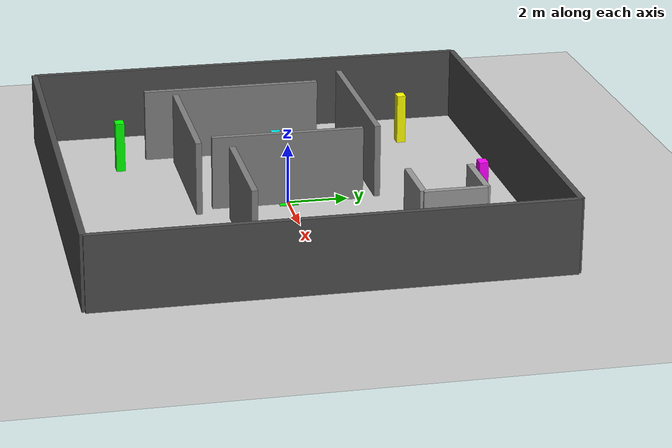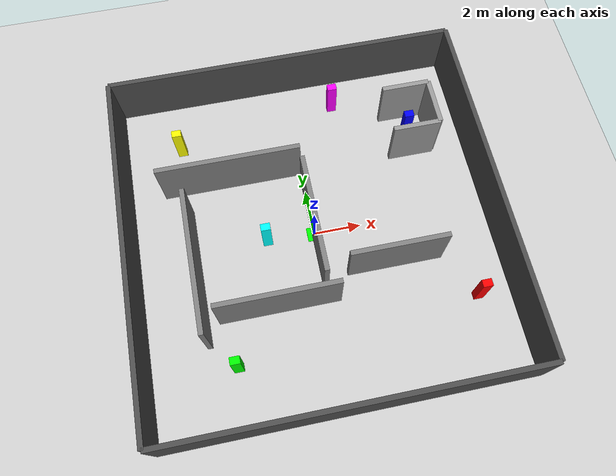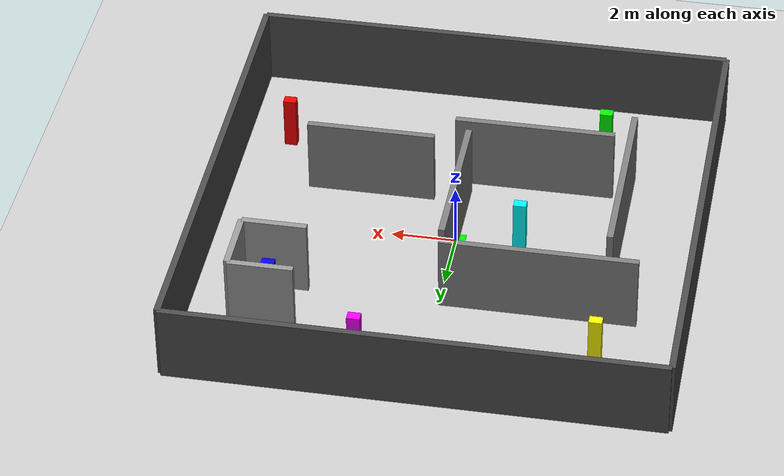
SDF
<?xml version="1.0" ?>
<sdf version="1.6">
  <world name="nidar_air_mouse">
    <physics type="ode">
      <max_step_size>0.001</max_step_size>
      <real_time_factor>1.0</real_time_factor>
      <real_time_update_rate>1000</real_time_update_rate>
    </physics>

    <scene>
      <ambient>0.8 0.8 0.8 1</ambient>
      <background>0.7 0.7 0.7 1</background>
      <shadows>true</shadows>
    </scene>

    <include>
      <uri>model://ground_plane</uri>
    </include>

    <include>
      <uri>model://sun</uri>
    </include>

    <!-- NIDAR AirMouse arena: 15x15m, launch pad 2ft x 2ft at origin -->
    <model name="launch_pad">
      <static>true</static>
      <pose>0 0 0.01 0 0 0</pose>
      <link name="link">
        <collision name="collision">
          <geometry><box><size>0.6096 0.6096 0.02</size></box></geometry>
        </collision>
        <visual name="visual">
          <geometry><box><size>0.6096 0.6096 0.02</size></box></geometry>
          <material><ambient>0 1 0 1</ambient><diffuse>0 1 0 1</diffuse></material>
        </visual>
      </link>
    </model>

    <!-- Outer walls 15x15m, height 2.44m (8ft) -->
    <model name="outer_north">
      <static>true</static>
      <pose>0 7.5 1.22 0 0 0</pose>
      <link name="link">
        <collision name="collision"><geometry><box><size>15 0.2 2.44</size></box></geometry></collision>
        <visual name="visual"><geometry><box><size>15 0.2 2.44</size></box></geometry><material><diffuse>0.3 0.3 0.3 1</diffuse></material></visual>
      </link>
    </model>
    <model name="outer_south">
      <static>true</static>
      <pose>0 -7.5 1.22 0 0 0</pose>
      <link name="link">
        <collision name="collision"><geometry><box><size>15 0.2 2.44</size></box></geometry></collision>
        <visual name="visual"><geometry><box><size>15 0.2 2.44</size></box></geometry><material><diffuse>0.3 0.3 0.3 1</diffuse></material></visual>
      </link>
    </model>
    <model name="outer_east">
      <static>true</static>
      <pose>7.5 0 1.22 0 0 0</pose>
      <link name="link">
        <collision name="collision"><geometry><box><size>0.2 15 2.44</size></box></geometry></collision>
        <visual name="visual"><geometry><box><size>0.2 15 2.44</size></box></geometry><material><diffuse>0.3 0.3 0.3 1</diffuse></material></visual>
      </link>
    </model>
    <model name="outer_west">
      <static>true</static>
      <pose>-7.5 0 1.22 0 0 0</pose>
      <link name="link">
        <collision name="collision"><geometry><box><size>0.2 15 2.44</size></box></geometry></collision>
        <visual name="visual"><geometry><box><size>0.2 15 2.44</size></box></geometry><material><diffuse>0.3 0.3 0.3 1</diffuse></material></visual>
      </link>
    </model>

    <!-- Maze internal walls - NIDAR style: corridors >= 1m, rooms 2x2m -->
    <model name="wall_1">
      <static>true</static>
      <pose>-3 3 1.22 0 0 0</pose>
      <link name="link">
        <collision name="collision"><geometry><box><size>6 0.2 2.44</size></box></geometry></collision>
        <visual name="visual"><geometry><box><size>6 0.2 2.44</size></box></geometry><material><diffuse>0.5 0.5 0.5 1</diffuse></material></visual>
      </link>
    </model>
    <model name="wall_2">
      <static>true</static>
      <pose>0 0 1.22 0 0 0</pose>
      <link name="link">
        <collision name="collision"><geometry><box><size>0.2 5 2.44</size></box></geometry></collision>
        <visual name="visual"><geometry><box><size>0.2 5 2.44</size></box></geometry><material><diffuse>0.5 0.5 0.5 1</diffuse></material></visual>
      </link>
    </model>
    <model name="wall_3">
      <static>true</static>
      <pose>3 -2 1.22 0 0 0</pose>
      <link name="link">
        <collision name="collision"><geometry><box><size>4 0.2 2.44</size></box></geometry></collision>
        <visual name="visual"><geometry><box><size>4 0.2 2.44</size></box></geometry><material><diffuse>0.5 0.5 0.5 1</diffuse></material></visual>
      </link>
    </model>
    <model name="wall_4">
      <static>true</static>
      <pose>-2 -3 1.22 0 0 0</pose>
      <link name="link">
        <collision name="collision"><geometry><box><size>5 0.2 2.44</size></box></geometry></collision>
        <visual name="visual"><geometry><box><size>5 0.2 2.44</size></box></geometry><material><diffuse>0.5 0.5 0.5 1</diffuse></material></visual>
      </link>
    </model>
    <model name="wall_5">
      <static>true</static>
      <pose>-5 -1 1.22 0 0 0</pose>
      <link name="link">
        <collision name="collision"><geometry><box><size>0.2 6 2.44</size></box></geometry></collision>
        <visual name="visual"><geometry><box><size>0.2 6 2.44</size></box></geometry><material><diffuse>0.5 0.5 0.5 1</diffuse></material></visual>
      </link>
    </model>

    <!-- Room 2x2m -->
    <model name="room1_wall_n">
      <static>true</static>
      <pose>5 5 1.22 0 0 0</pose>
      <link name="link">
        <collision name="collision"><geometry><box><size>2 0.2 2.44</size></box></geometry></collision>
        <visual name="visual"><geometry><box><size>2 0.2 2.44</size></box></geometry><material><diffuse>0.6 0.6 0.6 1</diffuse></material></visual>
      </link>
    </model>
    <model name="room1_wall_s">
      <static>true</static>
      <pose>5 3 1.22 0 0 0</pose>
      <link name="link">
        <collision name="collision"><geometry><box><size>2 0.2 2.44</size></box></geometry></collision>
        <visual name="visual"><geometry><box><size>2 0.2 2.44</size></box></geometry><material><diffuse>0.6 0.6 0.6 1</diffuse></material></visual>
      </link>
    </model>
    <model name="room1_wall_e">
      <static>true</static>
      <pose>6 4 1.22 0 0 0</pose>
      <link name="link">
        <collision name="collision"><geometry><box><size>0.2 2 2.44</size></box></geometry></collision>
        <visual name="visual"><geometry><box><size>0.2 2 2.44</size></box></geometry><material><diffuse>0.6 0.6 0.6 1</diffuse></material></visual>
      </link>
    </model>

    <!-- Survivors - up to 6, in rooms/corridors -->
    <model name="survivor_1">
      <static>true</static>
      <pose>5 4 0.9 0 0 0</pose>
      <link name="link">
        <collision name="collision"><geometry><box><size>0.4 0.3 1.7</size></box></geometry></collision>
        <visual name="visual"><geometry><box><size>0.4 0.3 1.7</size></box></geometry><material><diffuse>0 0 1 1</diffuse></material></visual>
      </link>
    </model>
    <model name="survivor_2">
      <static>true</static>
      <pose>-4 -5 0.9 0 0 0</pose>
      <link name="link">
        <collision name="collision"><geometry><box><size>0.4 0.3 1.7</size></box></geometry></collision>
        <visual name="visual"><geometry><box><size>0.4 0.3 1.7</size></box></geometry><material><diffuse>0 1 0 1</diffuse></material></visual>
      </link>
    </model>
    <model name="survivor_3">
      <static>true</static>
      <pose>6 -4 0.9 0 0 0</pose>
      <link name="link">
        <collision name="collision"><geometry><box><size>0.4 0.3 1.7</size></box></geometry></collision>
        <visual name="visual"><geometry><box><size>0.4 0.3 1.7</size></box></geometry><material><diffuse>1 0 0 1</diffuse></material></visual>
      </link>
    </model>
    <model name="survivor_4">
      <static>true</static>
      <pose>-5 5 0.9 0 0 0</pose>
      <link name="link">
        <collision name="collision"><geometry><box><size>0.4 0.3 1.7</size></box></geometry></collision>
        <visual name="visual"><geometry><box><size>0.4 0.3 1.7</size></box></geometry><material><diffuse>1 1 0 1</diffuse></material></visual>
      </link>
    </model>
    <model name="survivor_5">
      <static>true</static>
      <pose>2 6 0.9 0 0 0</pose>
      <link name="link">
        <collision name="collision"><geometry><box><size>0.4 0.3 1.7</size></box></geometry></collision>
        <visual name="visual"><geometry><box><size>0.4 0.3 1.7</size></box></geometry><material><diffuse>1 0 1 1</diffuse></material></visual>
      </link>
    </model>
    <model name="survivor_6">
      <static>true</static>
      <pose>-2 0 0.9 0 0 0</pose>
      <link name="link">
        <collision name="collision"><geometry><box><size>0.4 0.3 1.7</size></box></geometry></collision>
        <visual name="visual"><geometry><box><size>0.4 0.3 1.7</size></box></geometry><material><diffuse>0 1 1 1</diffuse></material></visual>
      </link>
    </model>
  </world>
</sdf>
